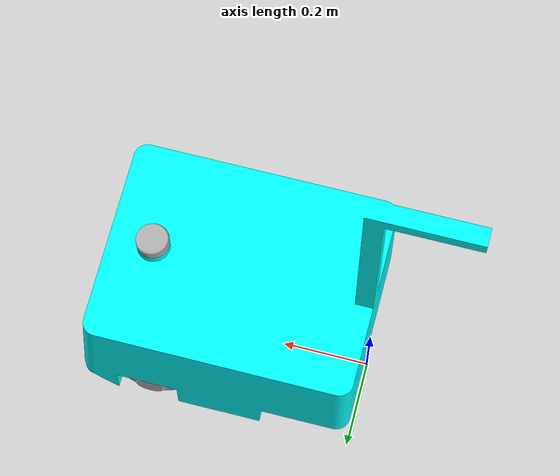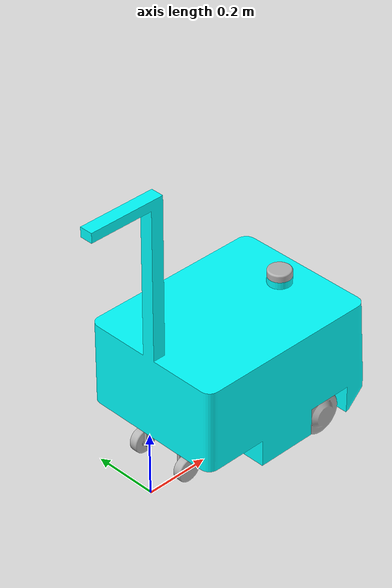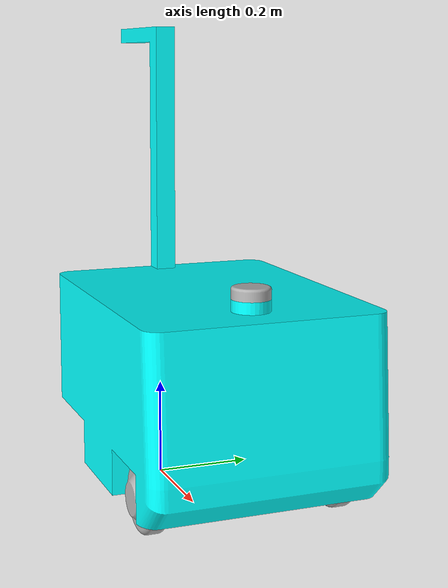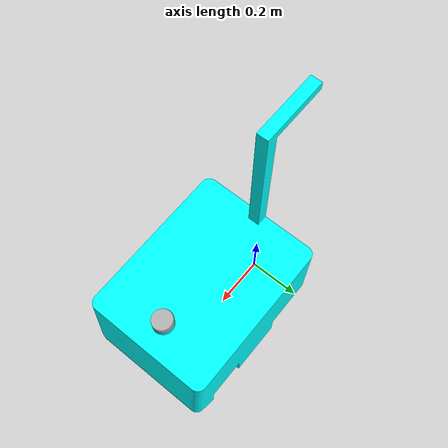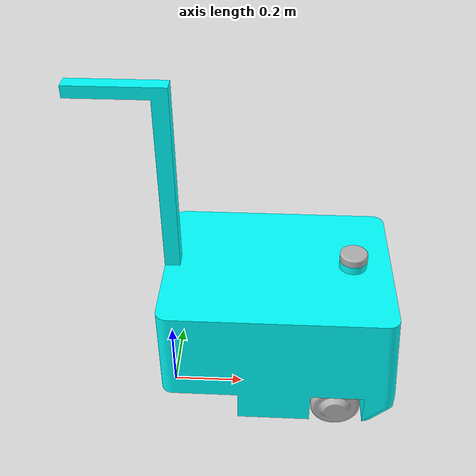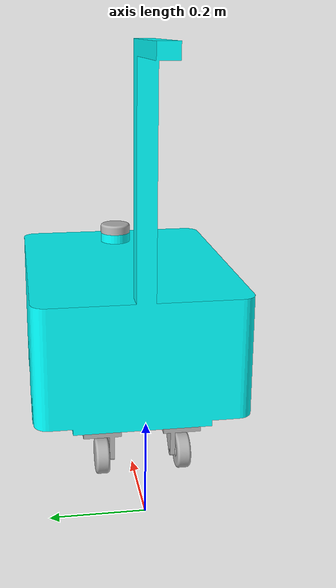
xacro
<?xml version="1.0" ?>
<robot name="VICA" xmlns:xacro="http://www.ros.org/wiki/xacro">

<xacro:include filename="$(find vica_description)/urdf/materials.xacro" />
<xacro:property name="wheel_radius" value="0.065" />
<xacro:property name="laser_x" value="0.00995" />
<xacro:property name="laser_y" value="0.0" />
<xacro:property name="laser_z" value="0.319" />
<xacro:property name="camera_x" value="0.105" />
<xacro:property name="camera_y" value="0.0" />
<xacro:property name="camera_z" value="0.265" />

<link name="base_footprint"/>

<joint name="base_footprint_joint" type="fixed">
  <origin xyz="0 0 ${wheel_radius}" rpy="0 0 0"/>
  <parent link="base_footprint"/>
  <child link="base_link"/>
</joint>

<link name="base_link">
  <inertial>
    <origin xyz="0.30817684998290357 0.0 0.2398462811293035" rpy="0 0 0"/>
    <mass value="100.3733798045696"/>
    <inertia ixx="2.797826" iyy="4.141308" izz="4.614014" ixy="-0.0" iyz="0.0" ixz="0.369915"/>
  </inertial>
  <visual>
    <origin xyz="0 0 0" rpy="0 0 0"/>
    <geometry>
      <mesh filename="package://vica_description/meshes/base_link.stl" scale="0.001 0.001 0.001"/>
    </geometry>
    <material name="body_blue"/>
  </visual>
  <collision>
    <origin xyz="0 0 0" rpy="0 0 0"/>
    <geometry>
      <mesh filename="package://vica_description/meshes/base_link.stl" scale="0.001 0.001 0.001"/>
    </geometry>
  </collision>
</link>

<link name="left_wheel_1">
  <inertial>
    <origin xyz="2.1094237467877974e-15 0.035687655502016025 1.3877787807814457e-17" rpy="0 0 0"/>
    <mass value="0.5663250710944822"/>
    <inertia ixx="0.000634" iyy="0.001025" izz="0.000634" ixy="0.0" iyz="-0.0" ixz="0.0"/>
  </inertial>
  <visual>
    <origin xyz="-0.459 -0.1465 -0.065" rpy="0 0 0"/>
    <geometry>
      <mesh filename="package://vica_description/meshes/left_wheel_1.stl" scale="0.001 0.001 0.001"/>
    </geometry>
    <material name="silver"/>
  </visual>
  <collision>
    <origin xyz="-0.459 -0.1465 -0.065" rpy="0 0 0"/>
    <geometry>
      <mesh filename="package://vica_description/meshes/left_wheel_1.stl" scale="0.001 0.001 0.001"/>
    </geometry>
  </collision>
</link>

<link name="right_wheel_1">
  <inertial>
    <origin xyz="-3.447242491461111e-14 -0.03568765550201608 0.0" rpy="0 0 0"/>
    <mass value="0.5663250710944814"/>
    <inertia ixx="0.000634" iyy="0.001025" izz="0.000634" ixy="-0.0" iyz="-0.0" ixz="0.0"/>
  </inertial>
  <visual>
    <origin xyz="-0.459 0.1465 -0.065" rpy="0 0 0"/>
    <geometry>
      <mesh filename="package://vica_description/meshes/right_wheel_1.stl" scale="0.001 0.001 0.001"/>
    </geometry>
    <material name="silver"/>
  </visual>
  <collision>
    <origin xyz="-0.459 0.1465 -0.065" rpy="0 0 0"/>
    <geometry>
      <mesh filename="package://vica_description/meshes/right_wheel_1.stl" scale="0.001 0.001 0.001"/>
    </geometry>
  </collision>
</link>

<link name="front_left_caster_wheel_1">
  <inertial>
    <origin xyz="-1.6792123247455493e-15 0.01574568542726719 2.7755575615628914e-17" rpy="0 0 0"/>
    <mass value="0.11451893837110633"/>
    <inertia ixx="4.7e-05" iyy="7.8e-05" izz="4.7e-05" ixy="-0.0" iyz="0.0" ixz="0.0"/>
  </inertial>
  <visual>
    <origin xyz="-0.053 -0.0695 -0.042" rpy="0 0 0"/>
    <geometry>
      <mesh filename="package://vica_description/meshes/front_left_caster_wheel_1.stl" scale="0.001 0.001 0.001"/>
    </geometry>
    <material name="silver"/>
  </visual>
  <collision>
    <origin xyz="-0.053 -0.0695 -0.042" rpy="0 0 0"/>
    <geometry>
      <mesh filename="package://vica_description/meshes/front_left_caster_wheel_1.stl" scale="0.001 0.001 0.001"/>
    </geometry>
  </collision>
</link>

<link name="front_right_caster_wheel_1">
  <inertial>
    <origin xyz="5.169475958410885e-15 -0.015745685427267203 1.3877787807814457e-17" rpy="0 0 0"/>
    <mass value="0.11451893837110629"/>
    <inertia ixx="4.7e-05" iyy="7.8e-05" izz="4.7e-05" ixy="-0.0" iyz="0.0" ixz="0.0"/>
  </inertial>
  <visual>
    <origin xyz="-0.053 0.0695 -0.042" rpy="0 0 0"/>
    <geometry>
      <mesh filename="package://vica_description/meshes/front_right_caster_wheel_1.stl" scale="0.001 0.001 0.001"/>
    </geometry>
    <material name="silver"/>
  </visual>
  <collision>
    <origin xyz="-0.053 0.0695 -0.042" rpy="0 0 0"/>
    <geometry>
      <mesh filename="package://vica_description/meshes/front_right_caster_wheel_1.stl" scale="0.001 0.001 0.001"/>
    </geometry>
  </collision>
</link>

<link name="front_right_caster_steer_1">
  <inertial>
    <origin xyz="-0.00408089404459451 0.0037449849629774684 -0.01766662210223026" rpy="0 0 0"/>
    <mass value="0.9536308497491053"/>
    <inertia ixx="0.000637" iyy="0.000626" izz="0.000908" ixy="4e-05" iyz="8.5e-05" ixz="-8.2e-05"/>
  </inertial>
  <visual>
    <origin xyz="-0.083 0.0845 -0.1075" rpy="0 0 0"/>
    <geometry>
      <mesh filename="package://vica_description/meshes/front_right_caster_steer_1.stl" scale="0.001 0.001 0.001"/>
    </geometry>
    <material name="silver"/>
  </visual>
  <collision>
    <origin xyz="-0.083 0.0845 -0.1075" rpy="0 0 0"/>
    <geometry>
      <mesh filename="package://vica_description/meshes/front_right_caster_steer_1.stl" scale="0.001 0.001 0.001"/>
    </geometry>
  </collision>
</link>

<link name="front_left_caster_steer_1">
  <inertial>
    <origin xyz="-0.00408089404459451 -0.003744984962977496 -0.01766662210223026" rpy="0 0 0"/>
    <mass value="0.9536308497491053"/>
    <inertia ixx="0.000637" iyy="0.000626" izz="0.000908" ixy="-4e-05" iyz="-8.5e-05" ixz="-8.2e-05"/>
  </inertial>
  <visual>
    <origin xyz="-0.083 -0.0845 -0.1075" rpy="0 0 0"/>
    <geometry>
      <mesh filename="package://vica_description/meshes/front_left_caster_steer_1.stl" scale="0.001 0.001 0.001"/>
    </geometry>
    <material name="silver"/>
  </visual>
  <collision>
    <origin xyz="-0.083 -0.0845 -0.1075" rpy="0 0 0"/>
    <geometry>
      <mesh filename="package://vica_description/meshes/front_left_caster_steer_1.stl" scale="0.001 0.001 0.001"/>
    </geometry>
  </collision>
</link>

<link name="laser_frame">
  <inertial>
    <origin xyz="0.0 0.0 0.010868727234877307" rpy="0 0 0"/>
    <mass value="0.16353480730457975"/>
    <inertia ixx="5.9e-05" iyy="5.9e-05" izz="0.000105" ixy="0.0" iyz="-0.0" ixz="-0.0"/>
  </inertial>
  <visual>
    <origin xyz="-${laser_x} -${laser_y} -${laser_z}" rpy="0 0 0"/>
    <geometry>
      <mesh filename="package://vica_description/meshes/lidar_1.stl" scale="0.001 0.001 0.001"/>
    </geometry>
    <material name="silver"/>
  </visual>
  <collision>
    <origin xyz="-${laser_x} -${laser_y} -${laser_z}" rpy="0 0 0"/>
    <geometry>
      <mesh filename="package://vica_description/meshes/lidar_1.stl" scale="0.001 0.001 0.001"/>
    </geometry>
  </collision>
</link>

<link name="camera_link"/>

<joint name="left_wheel_joint" type="continuous">
  <origin xyz="0.459 0.1465 0.065" rpy="0 0 0"/>
  <parent link="base_link"/>
  <child link="left_wheel_1"/>
  <axis xyz="0.0 1.0 0.0"/>
</joint>

<joint name="right_wheel_joint" type="continuous">
  <origin xyz="0.459 -0.1465 0.065" rpy="0 0 0"/>
  <parent link="base_link"/>
  <child link="right_wheel_1"/>
  <axis xyz="0.0 1.0 0.0"/>
</joint>

<joint name="front_left_caster_wheel_joint" type="continuous">
  <origin xyz="-0.03 -0.015 -0.0655" rpy="0 0 0"/>
  <parent link="front_left_caster_steer_1"/>
  <child link="front_left_caster_wheel_1"/>
  <axis xyz="0.0 -1.0 0.0"/>
</joint>

<joint name="front_right_caster_wheel_joint" type="continuous">
  <origin xyz="-0.03 0.015 -0.0655" rpy="0 0 0"/>
  <parent link="front_right_caster_steer_1"/>
  <child link="front_right_caster_wheel_1"/>
  <axis xyz="0.0 -1.0 0.0"/>
</joint>

<joint name="front_right_caster_steer_joint" type="continuous">
  <origin xyz="0.083 -0.0845 0.1075" rpy="0 0 0"/>
  <parent link="base_link"/>
  <child link="front_right_caster_steer_1"/>
  <axis xyz="0.0 0.0 -1.0"/>
</joint>

<joint name="front_left_caster_steer_joint" type="continuous">
  <origin xyz="0.083 0.0845 0.1075" rpy="0 0 0"/>
  <parent link="base_link"/>
  <child link="front_left_caster_steer_1"/>
  <axis xyz="0.0 0.0 -1.0"/>
</joint>

<joint name="laser_joint" type="fixed">
  <origin xyz="${laser_x} ${laser_y} ${laser_z}" rpy="0 0 0"/>
  <parent link="base_link"/>
  <child link="laser_frame"/>
</joint>

<joint name="camera_joint" type="fixed">
  <origin xyz="${camera_x} ${camera_y} ${camera_z}" rpy="0 0 0"/>
  <parent link="base_link"/>
  <child link="camera_link"/>
</joint>

</robot>

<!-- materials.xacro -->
<robot name="VICA" xmlns:xacro="http://www.ros.org/wiki/xacro" >

<material name="body_blue">
  <color rgba="0 1.0 1.0 1.0"/>
</material>

<material name="silver">
  <color rgba="0.70 0.70 0.70 1.0"/>
</material>

</robot>
